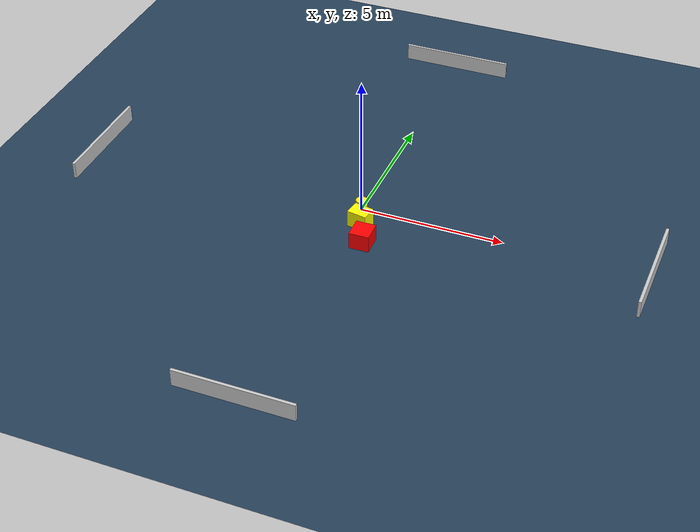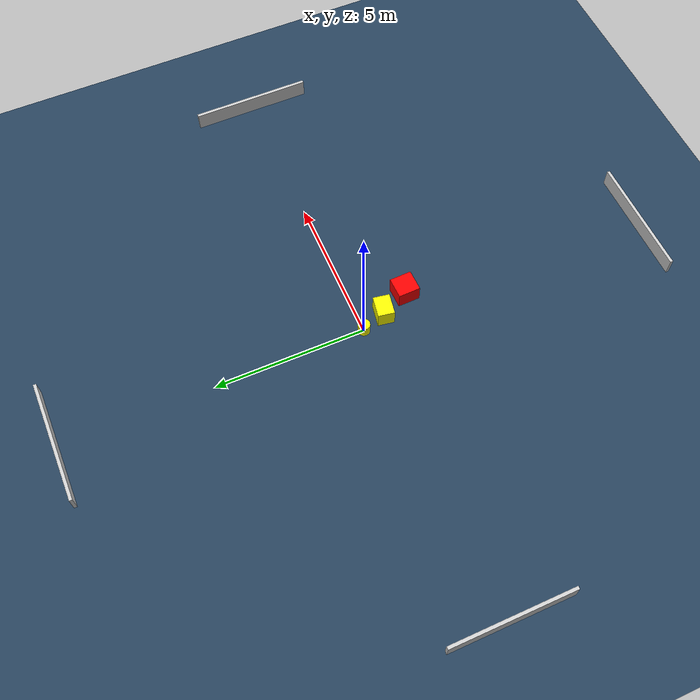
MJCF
<?xml version="1.0" ?>
<mujoco model="generated_environment">
  <option timestep="0.01" integrator="RK4" cone="elliptic"/>
  <default>
    <geom density="1"/>
  </default>
  <asset>
    <texture builtin="gradient" height="3072" name="skybox" rgb1="0.3 0.5 0.7" rgb2="0 0 0" type="skybox" width="512"/>
    <texture builtin="checker" height="300" name="groundplane" rgb1="0.2 0.3 0.4" rgb2="0.1 0.2 0.3" type="2d" width="300"/>
    <material name="groundplane" reflectance="0.2" texrepeat="5 5" texture="groundplane"/>
  </asset>
  <worldbody>
    <light dir="0 0 -1" directional="true" pos="0 0 1.5"/>
    <geom condim="3" friction="0.5 0.005 0.001" material="groundplane" name="floor" pos="0 0 0" size="0 0 0.05" type="plane"/>
    <body name="walls">
      <geom name="wall_1" condim="4" pos="-10.0 0.0 0.3" rgba="0.800000011920929 0.800000011920929 0.800000011920929 1.0" size="0.05 2.0 0.3" type="box"/>
      <geom name="wall_2" condim="4" pos="10.0 0.0 0.3" rgba="0.800000011920929 0.800000011920929 0.800000011920929 1.0" size="0.05 2.0 0.3" type="box"/>
      <geom name="wall_3" condim="4" pos="0.0 -10.0 0.3" rgba="0.800000011920929 0.800000011920929 0.800000011920929 1.0" size="2.0 0.05 0.3" type="box"/>
      <geom name="wall_4" condim="4" pos="0.0 10.0 0.3" rgba="0.800000011920929 0.800000011920929 0.800000011920929 1.0" size="2.0 0.05 0.3" type="box"/>
    </body>
    <body name="robot">
      <joint name="joint_x" type="slide" pos="0 0 0" axis="1 0 0"/>
      <joint name="joint_y" type="slide" pos="0 0 0" axis="0 1 0"/>
      <geom name="robot" type="cylinder" pos="0.0 0.0 0.2" size="0.2 0.2 0.0" mass="5.0" friction="1.0 0.005 0.0001" condim="4" rgba="1.0 1.0 0.0 1.0"/>
    </body>
    <body name="obstacle_1_movable">
      <geom name="obstacle_1_movable" condim="4" pos="0.2743688381687841 -0.8057889815204841 0.3" euler="0 0 170.2940903981182" friction="0.0 0.005 0.001" rgba="1.0 1.0 0.0 1.0" size="0.34921330145511853 0.27396873014680456 0.3" type="box" mass="0.1"/>
      <joint type="free"/>
    </body>
    <body name="obstacle_2_static">
      <geom name="obstacle_2_static" condim="4" pos="0.7169388126278102 -1.7467646247851059 0.3" euler="0 0 271.3021561974031" friction="0.0 0.005 0.001" rgba="1.0 0.0 0.0 1.0" size="0.3634041478531948 0.3462942739620991 0.3" type="box"/>
    </body>
  </worldbody>
  <actuator>
    <motor name="actuator_x" joint="joint_x" gear="1" ctrlrange="-1 1"/>
    <motor name="actuator_y" joint="joint_y" gear="1" ctrlrange="-1 1"/>
  </actuator>
</mujoco>
